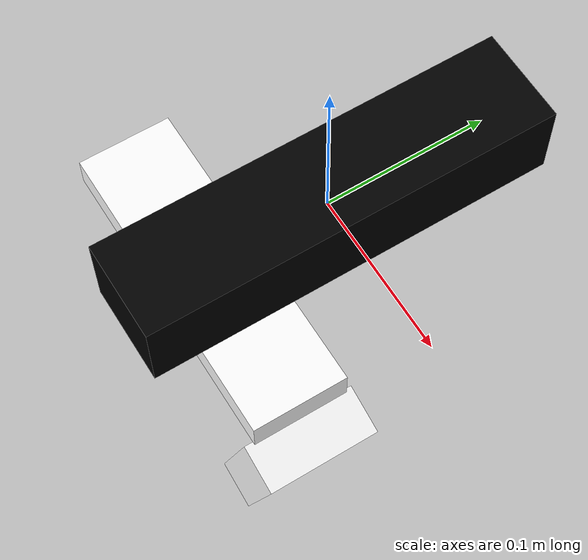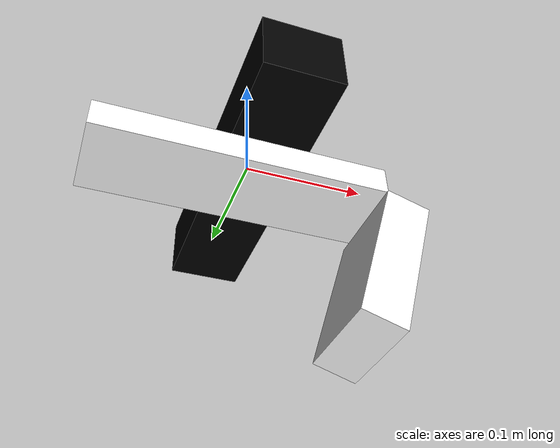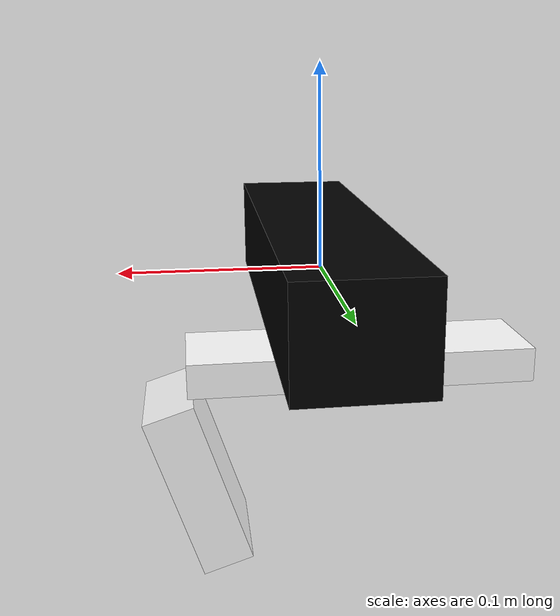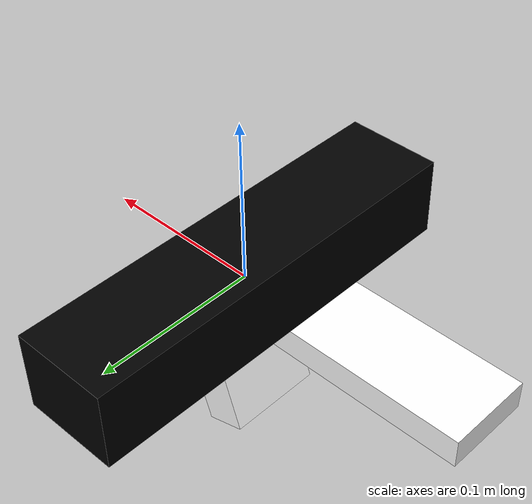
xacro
<?xml version="1.0" ?>
<robot xmlns:xacro="http://www.ros.org/wiki/xacro" name="rfhHandheld">

<property name="M_PI" value="3.14159"/>
<property name="SCALE" value="0.0254"/>
<property name="base_x" value="0.55" />
<property name="base_y" value="0.55" />
<property name="base_radius_visual" value="0.2025" />
<property name="base_radius_collision" value="0.25" />  <!-- used to be 0.35 -->

<material name="Green">
      <color rgba="0.0 0.8 0.0 1.0"/>
</material>
<material name="Red">
      <color rgba="0.8 0.0 0.0 1.0"/>
</material>
<material name="White">
      <color rgba="1.0 1.0 1.0 1.0"/>
</material>
<material name="Blue">
      <color rgba="0.0 0.0 0.8 1.0"/>
</material>
<material name="Black">
      <color rgba="0.0 0.0 0.0 1.0"/>
</material>
<material name="Grey">
      <color rgba="0.25 0.25 0.25 1.0"/>
</material>
<material name="Silver">
      <color rgba="0.38 0.38 0.38 1.0"/>
</material>
<material name="Sandal">
      <color rgba="0.84 0.87 0.50 1.0"/>
</material>
<material name="LBlue">
      <color rgba="0.18 0.30 0.58 1.0"/>
</material>
<material name="Yellow">
      <color rgba="1 1 0 1.0"/>
</material>

<!-- Jian's code -->
<!--RFD8500 links and jionts -->

	<link name="RFD8500_footprint">
	    <visual>
			<origin xyz="-0.1 0 0" rpy="0 0 0" />
			<geometry>
		    	<box size="0.2 0.06 0.02" />
			</geometry>
			<material name="White"/>
	    </visual>
	    <collision>
		<origin xyz="0 0 0.017" rpy="0 0 0" />
		<geometry>
		    <box size="0.02 0.01 0.01" />
		</geometry>
	    </collision>
	</link>

	<joint name="RFD8500_footprint_camera_joint" type="fixed">
  	        <origin xyz="0.07 -0.06 -0.07" rpy="0 0 0" />   <!-- for zed camera, the origial is at the left camera -->
  	        <!-- xyz="0.09 0 0.055" rpy="0 0.2356 0": rotation 15  Kinect 2 need add 0.05 as offset -->
 	        <parent link="camera_link" />  <!-- base_middle_link -->
             <child link="RFD8500_footprint" />
    </joint>

	<link name="RFD8500_antenna">
	    <visual>
			<origin xyz="-0.015 0 0" rpy="0 0 0" />
			<geometry>
		    	<box size="0.03 0.07 0.10" />
			</geometry>
			<material name="White"/>
	    </visual>
	    <collision>
		<origin xyz="0 0 0.017" rpy="0 0 0" />
		<geometry>
		    <box size="0.02 0.01 0.01" />
		</geometry>
	    </collision>
	</link>

    <joint name="RFD8500_antenna_footprint_joint" type="fixed">
  	        <origin xyz="0.01 0.0 -0.07" rpy="0 0.312 0" />   <!-- xyz="0.09 0 0.055" rpy="0 0.2356 0": rotation 15  Kinect 2 need add 0.05 as offset -->
 	        <parent link="RFD8500_footprint" />  <!-- base_middle_link -->
             <child link="RFD8500_antenna" />
    </joint>

<!-- kinnect links and joints -->

       <link name="camera_link">
         <inertial>
          <mass value="0.00001" />
          <origin xyz="0 0 0" />
         <inertia ixx="1.0" ixy="0.0" ixz="0.0"
                            iyy="1.0" iyz="0.0"
                            izz="1.0" />
         </inertial>

        <visual>
         <origin xyz=" 0 0 0 " rpy="0 0 0" />
          <material name="Black" />
          <geometry>
          <!-- mesh filename="package://rfh_handheld_description/meshes/kinect.dae"/ -->
          <box size="0.06 0.25 0.05" />
          </geometry>
        </visual>

        <collision>
         <origin xyz="0.0 0.0 0.0" rpy="0 0 0" />
         <geometry>
          <box size="0.0730 .2760 0.0720"/>
         </geometry>
        </collision>

         </link>

	  <joint name="camera_depth_joint" type="fixed">
	    <origin xyz="0 0.018 0" rpy="0 0 0" />
	    <parent link="camera_link" />
	    <child link="camera_depth_frame" />
	  </joint>

	  <link name="camera_depth_frame">
	    <inertial>
	      <mass value="0.000001" />
	      <origin xyz="0 0 0" />
	      <inertia ixx="0.0001" ixy="0.0" ixz="0.0"
	        iyy="0.0001" iyz="0.0"
	        izz="0.0001" />
	    </inertial>
	  </link>

	  <joint name="camera_depth_optical_joint" type="fixed">
	    <origin xyz="0 0 0" rpy="${-M_PI/2} 0 ${-M_PI/2}" />
	    <parent link="camera_depth_frame" />
	    <child link="camera_depth_optical_frame" />
	  </joint>

	  <link name="camera_depth_optical_frame">
	    <inertial>
	      <mass value="0.000001" />
	      <origin xyz="0 0 0" />
	      <inertia ixx="0.0001" ixy="0.0" ixz="0.0"
	        iyy="0.0001" iyz="0.0"
	        izz="0.0001" />
	    </inertial>
	  </link>

	  <joint name="camera_rgb_joint" type="fixed">
	    <origin xyz="0 -0.005 0" rpy="0 0 0" />
	    <parent link="camera_link" />
	    <child link="camera_rgb_frame" />
	  </joint>

	  <link name="camera_rgb_frame">
	    <inertial>
	      <mass value="0.000001" />
	      <origin xyz="0 0 0" />
	      <inertia ixx="0.0001" ixy="0.0" ixz="0.0"
	        iyy="0.0001" iyz="0.0"
	        izz="0.0001" />
	    </inertial>
	  </link>

	  <joint name="camera_rgb_optical_joint" type="fixed">
	    <origin xyz="0 0 0" rpy="${-M_PI/2} 0 ${-M_PI/2}" />
	    <parent link="camera_rgb_frame" />
	    <child link="camera_rgb_optical_frame" />
	  </joint>

	  <link name="camera_rgb_optical_frame">
	    <inertial>
	      <mass value="0.000001" />
	      <origin xyz="0 0 0" />
	      <inertia ixx="0.0001" ixy="0.0" ixz="0.0"
	        iyy="0.0001" iyz="0.0"
	        izz="0.0001" />
	    </inertial>
	  </link>
<!-- End Jian's code -->

</robot>
